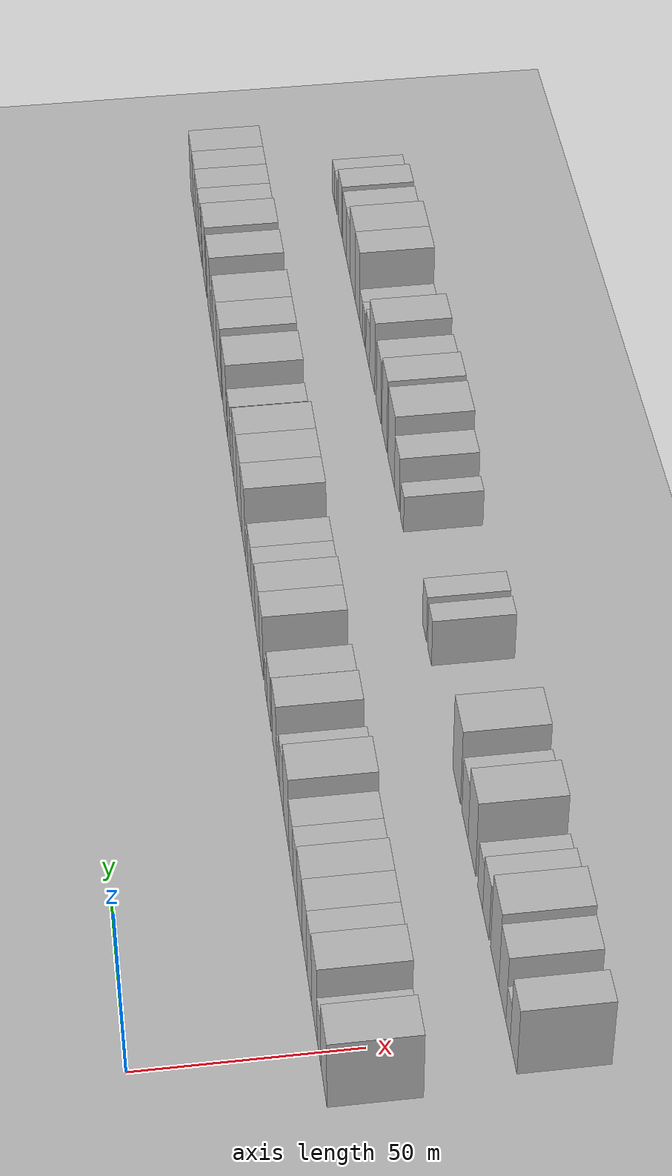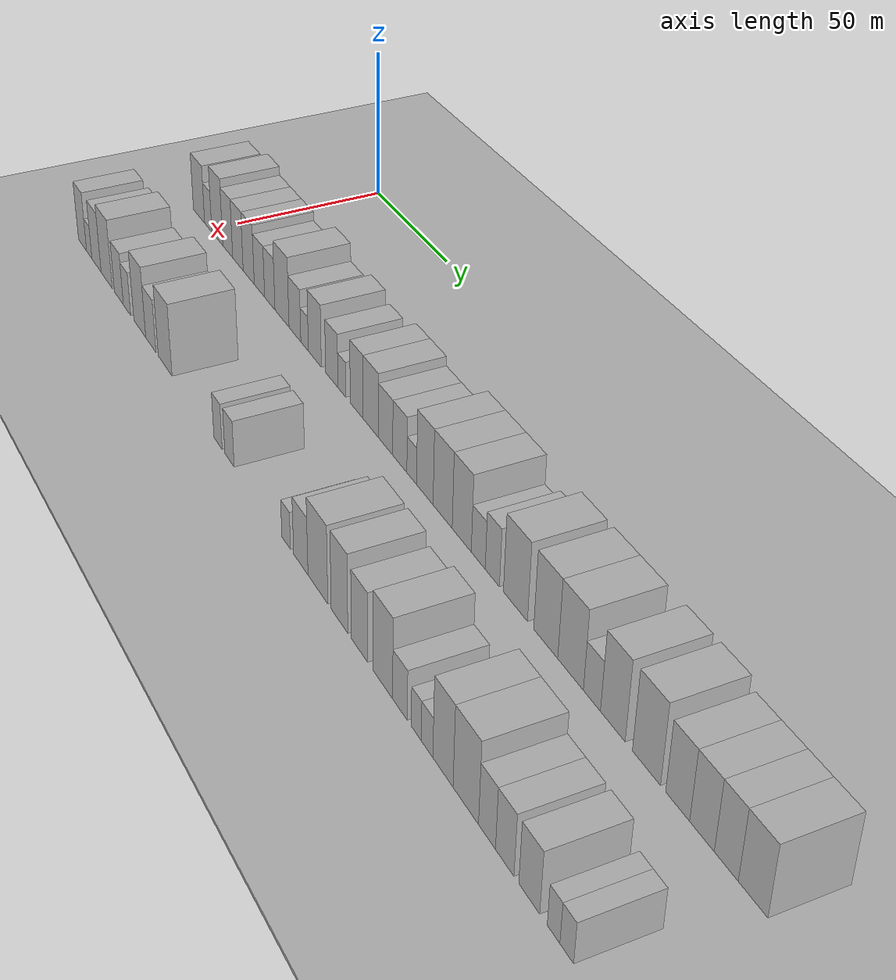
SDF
<sdf version="1.6">
 <world name="default">
  <include><name>ground_plane_1</name><uri>model://HANNAS_ground_plane</uri></include>
  <include>
   <name>ground_plane_2</name>
   <uri>model://HANNAS_ground_plane</uri>
   <pose>100 0 0  0 0 0</pose>
  </include>
  <model name="building_29">
   <static>1</static>
   <pose>50.0000 -9.3427 0 0.000000 0.000000 0.000000</pose>
   <link name="link">
    <pose>0 0 10.50 0 0 0</pose>
    <collision name="collision"><geometry><box><size>20.0000 10.3411 21.0000</size></box></geometry></collision>
    <visual name="visual">
     <cast_shadows>0</cast_shadows>
     <geometry><box><size>20.0000 10.3411 21.0000</size></box></geometry>
     <material>
      <script>
       <uri>model://HANNAS_wall/materials/scripts</uri>
       <uri>model://HANNAS_wall/materials/textures</uri>
       <name>vrc/HANNAS_wall</name>
      </script>
     </material>
    </visual>
   </link>
  </model>
  <model name="building_30">
   <static>1</static>
   <pose>50.0000 -0.9263 0 0.000000 0.000000 0.000000</pose>
   <link name="link">
    <pose>0 0 7.50 0 0 0</pose>
    <collision name="collision"><geometry><box><size>20.0000 6.4915 15.0000</size></box></geometry></collision>
    <visual name="visual">
     <cast_shadows>0</cast_shadows>
     <geometry><box><size>20.0000 6.4915 15.0000</size></box></geometry>
     <material>
      <script>
       <uri>model://HANNAS_wall/materials/scripts</uri>
       <uri>model://HANNAS_wall/materials/textures</uri>
       <name>vrc/HANNAS_wall</name>
      </script>
     </material>
    </visual>
   </link>
  </model>
  <model name="building_31">
   <static>1</static>
   <pose>50.0000 7.2069 0 0.000000 0.000000 0.000000</pose>
   <link name="link">
    <pose>0 0 12.00 0 0 0</pose>
    <collision name="collision"><geometry><box><size>20.0000 9.7750 24.0000</size></box></geometry></collision>
    <visual name="visual">
     <cast_shadows>0</cast_shadows>
     <geometry><box><size>20.0000 9.7750 24.0000</size></box></geometry>
     <material>
      <script>
       <uri>model://HANNAS_wall/materials/scripts</uri>
       <uri>model://HANNAS_wall/materials/textures</uri>
       <name>vrc/HANNAS_wall</name>
      </script>
     </material>
    </visual>
   </link>
  </model>
  <model name="building_32">
   <static>1</static>
   <pose>50.0000 16.3953 0 0.000000 0.000000 0.000000</pose>
   <link name="link">
    <pose>0 0 10.50 0 0 0</pose>
    <collision name="collision"><geometry><box><size>20.0000 8.6017 21.0000</size></box></geometry></collision>
    <visual name="visual">
     <cast_shadows>0</cast_shadows>
     <geometry><box><size>20.0000 8.6017 21.0000</size></box></geometry>
     <material>
      <script>
       <uri>model://HANNAS_wall/materials/scripts</uri>
       <uri>model://HANNAS_wall/materials/textures</uri>
       <name>vrc/HANNAS_wall</name>
      </script>
     </material>
    </visual>
   </link>
  </model>
  <model name="building_33">
   <static>1</static>
   <pose>50.0000 25.1196 0 0.000000 0.000000 0.000000</pose>
   <link name="link">
    <pose>0 0 10.50 0 0 0</pose>
    <collision name="collision"><geometry><box><size>20.0000 8.8470 21.0000</size></box></geometry></collision>
    <visual name="visual">
     <cast_shadows>0</cast_shadows>
     <geometry><box><size>20.0000 8.8470 21.0000</size></box></geometry>
     <material>
      <script>
       <uri>model://HANNAS_wall/materials/scripts</uri>
       <uri>model://HANNAS_wall/materials/textures</uri>
       <name>vrc/HANNAS_wall</name>
      </script>
     </material>
    </visual>
   </link>
  </model>
  <model name="building_34">
   <static>1</static>
   <pose>50.0000 34.1502 0 0.000000 0.000000 0.000000</pose>
   <link name="link">
    <pose>0 0 10.50 0 0 0</pose>
    <collision name="collision"><geometry><box><size>20.0000 9.2142 21.0000</size></box></geometry></collision>
    <visual name="visual">
     <cast_shadows>0</cast_shadows>
     <geometry><box><size>20.0000 9.2142 21.0000</size></box></geometry>
     <material>
      <script>
       <uri>model://HANNAS_wall/materials/scripts</uri>
       <uri>model://HANNAS_wall/materials/textures</uri>
       <name>vrc/HANNAS_wall</name>
      </script>
     </material>
    </visual>
   </link>
  </model>
  <model name="building_35">
   <static>1</static>
   <pose>50.0000 42.9496 0 0.000000 0.000000 0.000000</pose>
   <link name="link">
    <pose>0 0 9.00 0 0 0</pose>
    <collision name="collision"><geometry><box><size>20.0000 8.3844 18.0000</size></box></geometry></collision>
    <visual name="visual">
     <cast_shadows>0</cast_shadows>
     <geometry><box><size>20.0000 8.3844 18.0000</size></box></geometry>
     <material>
      <script>
       <uri>model://HANNAS_wall/materials/scripts</uri>
       <uri>model://HANNAS_wall/materials/textures</uri>
       <name>vrc/HANNAS_wall</name>
      </script>
     </material>
    </visual>
   </link>
  </model>
  <model name="building_36">
   <static>1</static>
   <pose>50.0000 51.2232 0 0.000000 0.000000 0.000000</pose>
   <link name="link">
    <pose>0 0 9.00 0 0 0</pose>
    <collision name="collision"><geometry><box><size>20.0000 8.1629 18.0000</size></box></geometry></collision>
    <visual name="visual">
     <cast_shadows>0</cast_shadows>
     <geometry><box><size>20.0000 8.1629 18.0000</size></box></geometry>
     <material>
      <script>
       <uri>model://HANNAS_wall/materials/scripts</uri>
       <uri>model://HANNAS_wall/materials/textures</uri>
       <name>vrc/HANNAS_wall</name>
      </script>
     </material>
    </visual>
   </link>
  </model>
  <model name="building_37">
   <static>1</static>
   <pose>50.0000 60.7332 0 0.000000 0.000000 0.000000</pose>
   <link name="link">
    <pose>0 0 12.00 0 0 0</pose>
    <collision name="collision"><geometry><box><size>20.0000 10.8570 24.0000</size></box></geometry></collision>
    <visual name="visual">
     <cast_shadows>0</cast_shadows>
     <geometry><box><size>20.0000 10.8570 24.0000</size></box></geometry>
     <material>
      <script>
       <uri>model://HANNAS_wall/materials/scripts</uri>
       <uri>model://HANNAS_wall/materials/textures</uri>
       <name>vrc/HANNAS_wall</name>
      </script>
     </material>
    </visual>
   </link>
  </model>
  <model name="building_38">
   <static>1</static>
   <pose>50.0000 70.5709 0 0.000000 0.000000 0.000000</pose>
   <link name="link">
    <pose>0 0 9.00 0 0 0</pose>
    <collision name="collision"><geometry><box><size>20.0000 8.8184 18.0000</size></box></geometry></collision>
    <visual name="visual">
     <cast_shadows>0</cast_shadows>
     <geometry><box><size>20.0000 8.8184 18.0000</size></box></geometry>
     <material>
      <script>
       <uri>model://HANNAS_wall/materials/scripts</uri>
       <uri>model://HANNAS_wall/materials/textures</uri>
       <name>vrc/HANNAS_wall</name>
      </script>
     </material>
    </visual>
   </link>
  </model>
  <model name="building_39">
   <static>1</static>
   <pose>50.0000 77.7623 0 0.000000 0.000000 0.000000</pose>
   <link name="link">
    <pose>0 0 6.00 0 0 0</pose>
    <collision name="collision"><geometry><box><size>20.0000 5.5645 12.0000</size></box></geometry></collision>
    <visual name="visual">
     <cast_shadows>0</cast_shadows>
     <geometry><box><size>20.0000 5.5645 12.0000</size></box></geometry>
     <material>
      <script>
       <uri>model://HANNAS_wall/materials/scripts</uri>
       <uri>model://HANNAS_wall/materials/textures</uri>
       <name>vrc/HANNAS_wall</name>
      </script>
     </material>
    </visual>
   </link>
  </model>
  <model name="building_40">
   <static>1</static>
   <pose>50.0000 85.2182 0 0.000000 0.000000 0.000000</pose>
   <link name="link">
    <pose>0 0 10.50 0 0 0</pose>
    <collision name="collision"><geometry><box><size>20.0000 9.3475 21.0000</size></box></geometry></collision>
    <visual name="visual">
     <cast_shadows>0</cast_shadows>
     <geometry><box><size>20.0000 9.3475 21.0000</size></box></geometry>
     <material>
      <script>
       <uri>model://HANNAS_wall/materials/scripts</uri>
       <uri>model://HANNAS_wall/materials/textures</uri>
       <name>vrc/HANNAS_wall</name>
      </script>
     </material>
    </visual>
   </link>
  </model>
  <model name="building_41">
   <static>1</static>
   <pose>50.0000 97.1692 0 0.000000 0.000000 0.000000</pose>
   <link name="link">
    <pose>0 0 9.00 0 0 0</pose>
    <collision name="collision"><geometry><box><size>20.0000 8.5545 18.0000</size></box></geometry></collision>
    <visual name="visual">
     <cast_shadows>0</cast_shadows>
     <geometry><box><size>20.0000 8.5545 18.0000</size></box></geometry>
     <material>
      <script>
       <uri>model://HANNAS_wall/materials/scripts</uri>
       <uri>model://HANNAS_wall/materials/textures</uri>
       <name>vrc/HANNAS_wall</name>
      </script>
     </material>
    </visual>
   </link>
  </model>
  <model name="building_42">
   <static>1</static>
   <pose>50.0000 104.1438 0 0.000000 0.000000 0.000000</pose>
   <link name="link">
    <pose>0 0 6.00 0 0 0</pose>
    <collision name="collision"><geometry><box><size>20.0000 5.3945 12.0000</size></box></geometry></collision>
    <visual name="visual">
     <cast_shadows>0</cast_shadows>
     <geometry><box><size>20.0000 5.3945 12.0000</size></box></geometry>
     <material>
      <script>
       <uri>model://HANNAS_wall/materials/scripts</uri>
       <uri>model://HANNAS_wall/materials/textures</uri>
       <name>vrc/HANNAS_wall</name>
      </script>
     </material>
    </visual>
   </link>
  </model>
  <model name="building_43">
   <static>1</static>
   <pose>50.0000 114.1314 0 0.000000 0.000000 0.000000</pose>
   <link name="link">
    <pose>0 0 10.50 0 0 0</pose>
    <collision name="collision"><geometry><box><size>20.0000 8.5808 21.0000</size></box></geometry></collision>
    <visual name="visual">
     <cast_shadows>0</cast_shadows>
     <geometry><box><size>20.0000 8.5808 21.0000</size></box></geometry>
     <material>
      <script>
       <uri>model://HANNAS_wall/materials/scripts</uri>
       <uri>model://HANNAS_wall/materials/textures</uri>
       <name>vrc/HANNAS_wall</name>
      </script>
     </material>
    </visual>
   </link>
  </model>
  <model name="building_44">
   <static>1</static>
   <pose>50.0000 123.3507 0 0.000000 0.000000 0.000000</pose>
   <link name="link">
    <pose>0 0 10.50 0 0 0</pose>
    <collision name="collision"><geometry><box><size>20.0000 9.8578 21.0000</size></box></geometry></collision>
    <visual name="visual">
     <cast_shadows>0</cast_shadows>
     <geometry><box><size>20.0000 9.8578 21.0000</size></box></geometry>
     <material>
      <script>
       <uri>model://HANNAS_wall/materials/scripts</uri>
       <uri>model://HANNAS_wall/materials/textures</uri>
       <name>vrc/HANNAS_wall</name>
      </script>
     </material>
    </visual>
   </link>
  </model>
  <model name="building_45">
   <static>1</static>
   <pose>50.0000 132.7346 0 0.000000 0.000000 0.000000</pose>
   <link name="link">
    <pose>0 0 9.00 0 0 0</pose>
    <collision name="collision"><geometry><box><size>20.0000 8.9099 18.0000</size></box></geometry></collision>
    <visual name="visual">
     <cast_shadows>0</cast_shadows>
     <geometry><box><size>20.0000 8.9099 18.0000</size></box></geometry>
     <material>
      <script>
       <uri>model://HANNAS_wall/materials/scripts</uri>
       <uri>model://HANNAS_wall/materials/textures</uri>
       <name>vrc/HANNAS_wall</name>
      </script>
     </material>
    </visual>
   </link>
  </model>
  <model name="building_46">
   <static>1</static>
   <pose>50.0000 141.5011 0 0.000000 0.000000 0.000000</pose>
   <link name="link">
    <pose>0 0 9.00 0 0 0</pose>
    <collision name="collision"><geometry><box><size>20.0000 8.6232 18.0000</size></box></geometry></collision>
    <visual name="visual">
     <cast_shadows>0</cast_shadows>
     <geometry><box><size>20.0000 8.6232 18.0000</size></box></geometry>
     <material>
      <script>
       <uri>model://HANNAS_wall/materials/scripts</uri>
       <uri>model://HANNAS_wall/materials/textures</uri>
       <name>vrc/HANNAS_wall</name>
      </script>
     </material>
    </visual>
   </link>
  </model>
  <model name="building_47">
   <static>1</static>
   <pose>50.0000 148.7037 0 0.000000 0.000000 0.000000</pose>
   <link name="link">
    <pose>0 0 6.00 0 0 0</pose>
    <collision name="collision"><geometry><box><size>20.0000 5.7819 12.0000</size></box></geometry></collision>
    <visual name="visual">
     <cast_shadows>0</cast_shadows>
     <geometry><box><size>20.0000 5.7819 12.0000</size></box></geometry>
     <material>
      <script>
       <uri>model://HANNAS_wall/materials/scripts</uri>
       <uri>model://HANNAS_wall/materials/textures</uri>
       <name>vrc/HANNAS_wall</name>
      </script>
     </material>
    </visual>
   </link>
  </model>
  <model name="building_48">
   <static>1</static>
   <pose>50.0000 156.4037 0 0.000000 0.000000 0.000000</pose>
   <link name="link">
    <pose>0 0 12.00 0 0 0</pose>
    <collision name="collision"><geometry><box><size>20.0000 9.6182 24.0000</size></box></geometry></collision>
    <visual name="visual">
     <cast_shadows>0</cast_shadows>
     <geometry><box><size>20.0000 9.6182 24.0000</size></box></geometry>
     <material>
      <script>
       <uri>model://HANNAS_wall/materials/scripts</uri>
       <uri>model://HANNAS_wall/materials/textures</uri>
       <name>vrc/HANNAS_wall</name>
      </script>
     </material>
    </visual>
   </link>
  </model>
  <model name="building_49">
   <static>1</static>
   <pose>50.0000 166.6151 0 0.000000 0.000000 0.000000</pose>
   <link name="link">
    <pose>0 0 12.00 0 0 0</pose>
    <collision name="collision"><geometry><box><size>20.0000 10.8045 24.0000</size></box></geometry></collision>
    <visual name="visual">
     <cast_shadows>0</cast_shadows>
     <geometry><box><size>20.0000 10.8045 24.0000</size></box></geometry>
     <material>
      <script>
       <uri>model://HANNAS_wall/materials/scripts</uri>
       <uri>model://HANNAS_wall/materials/textures</uri>
       <name>vrc/HANNAS_wall</name>
      </script>
     </material>
    </visual>
   </link>
  </model>
  <model name="building_50">
   <static>1</static>
   <pose>50.0000 177.2005 0 0.000000 0.000000 0.000000</pose>
   <link name="link">
    <pose>0 0 12.00 0 0 0</pose>
    <collision name="collision"><geometry><box><size>20.0000 10.3664 24.0000</size></box></geometry></collision>
    <visual name="visual">
     <cast_shadows>0</cast_shadows>
     <geometry><box><size>20.0000 10.3664 24.0000</size></box></geometry>
     <material>
      <script>
       <uri>model://HANNAS_wall/materials/scripts</uri>
       <uri>model://HANNAS_wall/materials/textures</uri>
       <name>vrc/HANNAS_wall</name>
      </script>
     </material>
    </visual>
   </link>
  </model>
  <model name="building_51">
   <static>1</static>
   <pose>50.0000 186.0834 0 0.000000 0.000000 0.000000</pose>
   <link name="link">
    <pose>0 0 7.50 0 0 0</pose>
    <collision name="collision"><geometry><box><size>20.0000 7.3994 15.0000</size></box></geometry></collision>
    <visual name="visual">
     <cast_shadows>0</cast_shadows>
     <geometry><box><size>20.0000 7.3994 15.0000</size></box></geometry>
     <material>
      <script>
       <uri>model://HANNAS_wall/materials/scripts</uri>
       <uri>model://HANNAS_wall/materials/textures</uri>
       <name>vrc/HANNAS_wall</name>
      </script>
     </material>
    </visual>
   </link>
  </model>
  <model name="building_52">
   <static>1</static>
   <pose>50.0000 193.4686 0 0.000000 0.000000 0.000000</pose>
   <link name="link">
    <pose>0 0 9.00 0 0 0</pose>
    <collision name="collision"><geometry><box><size>20.0000 7.3710 18.0000</size></box></geometry></collision>
    <visual name="visual">
     <cast_shadows>0</cast_shadows>
     <geometry><box><size>20.0000 7.3710 18.0000</size></box></geometry>
     <material>
      <script>
       <uri>model://HANNAS_wall/materials/scripts</uri>
       <uri>model://HANNAS_wall/materials/textures</uri>
       <name>vrc/HANNAS_wall</name>
      </script>
     </material>
    </visual>
   </link>
  </model>
  <model name="building_53">
   <static>1</static>
   <pose>50.0000 205.1435 0 0.000000 0.000000 0.000000</pose>
   <link name="link">
    <pose>0 0 12.00 0 0 0</pose>
    <collision name="collision"><geometry><box><size>20.0000 11.9788 24.0000</size></box></geometry></collision>
    <visual name="visual">
     <cast_shadows>0</cast_shadows>
     <geometry><box><size>20.0000 11.9788 24.0000</size></box></geometry>
     <material>
      <script>
       <uri>model://HANNAS_wall/materials/scripts</uri>
       <uri>model://HANNAS_wall/materials/textures</uri>
       <name>vrc/HANNAS_wall</name>
      </script>
     </material>
    </visual>
   </link>
  </model>
  <model name="building_54">
   <static>1</static>
   <pose>50.0000 219.8021 0 0.000000 0.000000 0.000000</pose>
   <link name="link">
    <pose>0 0 12.00 0 0 0</pose>
    <collision name="collision"><geometry><box><size>20.0000 11.3384 24.0000</size></box></geometry></collision>
    <visual name="visual">
     <cast_shadows>0</cast_shadows>
     <geometry><box><size>20.0000 11.3384 24.0000</size></box></geometry>
     <material>
      <script>
       <uri>model://HANNAS_wall/materials/scripts</uri>
       <uri>model://HANNAS_wall/materials/textures</uri>
       <name>vrc/HANNAS_wall</name>
      </script>
     </material>
    </visual>
   </link>
  </model>
  <model name="building_55">
   <static>1</static>
   <pose>50.0000 231.2927 0 0.000000 0.000000 0.000000</pose>
   <link name="link">
    <pose>0 0 12.00 0 0 0</pose>
    <collision name="collision"><geometry><box><size>20.0000 11.6429 24.0000</size></box></geometry></collision>
    <visual name="visual">
     <cast_shadows>0</cast_shadows>
     <geometry><box><size>20.0000 11.6429 24.0000</size></box></geometry>
     <material>
      <script>
       <uri>model://HANNAS_wall/materials/scripts</uri>
       <uri>model://HANNAS_wall/materials/textures</uri>
       <name>vrc/HANNAS_wall</name>
      </script>
     </material>
    </visual>
   </link>
  </model>
  <model name="building_56">
   <static>1</static>
   <pose>50.0000 240.8480 0 0.000000 0.000000 0.000000</pose>
   <link name="link">
    <pose>0 0 7.50 0 0 0</pose>
    <collision name="collision"><geometry><box><size>20.0000 7.4675 15.0000</size></box></geometry></collision>
    <visual name="visual">
     <cast_shadows>0</cast_shadows>
     <geometry><box><size>20.0000 7.4675 15.0000</size></box></geometry>
     <material>
      <script>
       <uri>model://HANNAS_wall/materials/scripts</uri>
       <uri>model://HANNAS_wall/materials/textures</uri>
       <name>vrc/HANNAS_wall</name>
      </script>
     </material>
    </visual>
   </link>
  </model>
  <model name="building_57">
   <static>1</static>
   <pose>50.0000 249.8344 0 0.000000 0.000000 0.000000</pose>
   <link name="link">
    <pose>0 0 12.00 0 0 0</pose>
    <collision name="collision"><geometry><box><size>20.0000 10.5054 24.0000</size></box></geometry></collision>
    <visual name="visual">
     <cast_shadows>0</cast_shadows>
     <geometry><box><size>20.0000 10.5054 24.0000</size></box></geometry>
     <material>
      <script>
       <uri>model://HANNAS_wall/materials/scripts</uri>
       <uri>model://HANNAS_wall/materials/textures</uri>
       <name>vrc/HANNAS_wall</name>
      </script>
     </material>
    </visual>
   </link>
  </model>
  <model name="building_58">
   <static>1</static>
   <pose>50.0000 263.7478 0 0.000000 0.000000 0.000000</pose>
   <link name="link">
    <pose>0 0 12.00 0 0 0</pose>
    <collision name="collision"><geometry><box><size>20.0000 11.3214 24.0000</size></box></geometry></collision>
    <visual name="visual">
     <cast_shadows>0</cast_shadows>
     <geometry><box><size>20.0000 11.3214 24.0000</size></box></geometry>
     <material>
      <script>
       <uri>model://HANNAS_wall/materials/scripts</uri>
       <uri>model://HANNAS_wall/materials/textures</uri>
       <name>vrc/HANNAS_wall</name>
      </script>
     </material>
    </visual>
   </link>
  </model>
  <model name="building_59">
   <static>1</static>
   <pose>50.0000 276.0227 0 0.000000 0.000000 0.000000</pose>
   <link name="link">
    <pose>0 0 10.50 0 0 0</pose>
    <collision name="collision"><geometry><box><size>20.0000 9.2283 21.0000</size></box></geometry></collision>
    <visual name="visual">
     <cast_shadows>0</cast_shadows>
     <geometry><box><size>20.0000 9.2283 21.0000</size></box></geometry>
     <material>
      <script>
       <uri>model://HANNAS_wall/materials/scripts</uri>
       <uri>model://HANNAS_wall/materials/textures</uri>
       <name>vrc/HANNAS_wall</name>
      </script>
     </material>
    </visual>
   </link>
  </model>
  <model name="building_60">
   <static>1</static>
   <pose>50.0000 285.2023 0 0.000000 0.000000 0.000000</pose>
   <link name="link">
    <pose>0 0 10.50 0 0 0</pose>
    <collision name="collision"><geometry><box><size>20.0000 9.1310 21.0000</size></box></geometry></collision>
    <visual name="visual">
     <cast_shadows>0</cast_shadows>
     <geometry><box><size>20.0000 9.1310 21.0000</size></box></geometry>
     <material>
      <script>
       <uri>model://HANNAS_wall/materials/scripts</uri>
       <uri>model://HANNAS_wall/materials/textures</uri>
       <name>vrc/HANNAS_wall</name>
      </script>
     </material>
    </visual>
   </link>
  </model>
  <model name="building_61">
   <static>1</static>
   <pose>50.0000 294.0613 0 0.000000 0.000000 0.000000</pose>
   <link name="link">
    <pose>0 0 10.50 0 0 0</pose>
    <collision name="collision"><geometry><box><size>20.0000 8.5869 21.0000</size></box></geometry></collision>
    <visual name="visual">
     <cast_shadows>0</cast_shadows>
     <geometry><box><size>20.0000 8.5869 21.0000</size></box></geometry>
     <material>
      <script>
       <uri>model://HANNAS_wall/materials/scripts</uri>
       <uri>model://HANNAS_wall/materials/textures</uri>
       <name>vrc/HANNAS_wall</name>
      </script>
     </material>
    </visual>
   </link>
  </model>
  <model name="building_62">
   <static>1</static>
   <pose>50.0000 303.4653 0 0.000000 0.000000 0.000000</pose>
   <link name="link">
    <pose>0 0 10.50 0 0 0</pose>
    <collision name="collision"><geometry><box><size>20.0000 10.2212 21.0000</size></box></geometry></collision>
    <visual name="visual">
     <cast_shadows>0</cast_shadows>
     <geometry><box><size>20.0000 10.2212 21.0000</size></box></geometry>
     <material>
      <script>
       <uri>model://HANNAS_wall/materials/scripts</uri>
       <uri>model://HANNAS_wall/materials/textures</uri>
       <name>vrc/HANNAS_wall</name>
      </script>
     </material>
    </visual>
   </link>
  </model>
  <model name="building_96">
   <static>1</static>
   <pose>90.0000 -6.8732 0 0.000000 0.000000 0.000000</pose>
   <link name="link">
    <pose>0 0 10.50 0 0 0</pose>
    <collision name="collision"><geometry><box><size>20.0000 8.4338 21.0000</size></box></geometry></collision>
    <visual name="visual">
     <cast_shadows>0</cast_shadows>
     <geometry><box><size>20.0000 8.4338 21.0000</size></box></geometry>
     <material>
      <script>
       <uri>model://HANNAS_wall/materials/scripts</uri>
       <uri>model://HANNAS_wall/materials/textures</uri>
       <name>vrc/HANNAS_wall</name>
      </script>
     </material>
    </visual>
   </link>
  </model>
  <model name="building_97">
   <static>1</static>
   <pose>90.0000 0.0352 0 0.000000 0.000000 0.000000</pose>
   <link name="link">
    <pose>0 0 6.00 0 0 0</pose>
    <collision name="collision"><geometry><box><size>20.0000 5.3831 12.0000</size></box></geometry></collision>
    <visual name="visual">
     <cast_shadows>0</cast_shadows>
     <geometry><box><size>20.0000 5.3831 12.0000</size></box></geometry>
     <material>
      <script>
       <uri>model://HANNAS_wall/materials/scripts</uri>
       <uri>model://HANNAS_wall/materials/textures</uri>
       <name>vrc/HANNAS_wall</name>
      </script>
     </material>
    </visual>
   </link>
  </model>
  <model name="building_98">
   <static>1</static>
   <pose>90.0000 7.3575 0 0.000000 0.000000 0.000000</pose>
   <link name="link">
    <pose>0 0 10.50 0 0 0</pose>
    <collision name="collision"><geometry><box><size>20.0000 9.2614 21.0000</size></box></geometry></collision>
    <visual name="visual">
     <cast_shadows>0</cast_shadows>
     <geometry><box><size>20.0000 9.2614 21.0000</size></box></geometry>
     <material>
      <script>
       <uri>model://HANNAS_wall/materials/scripts</uri>
       <uri>model://HANNAS_wall/materials/textures</uri>
       <name>vrc/HANNAS_wall</name>
      </script>
     </material>
    </visual>
   </link>
  </model>
  <model name="building_99">
   <static>1</static>
   <pose>90.0000 17.4516 0 0.000000 0.000000 0.000000</pose>
   <link name="link">
    <pose>0 0 12.00 0 0 0</pose>
    <collision name="collision"><geometry><box><size>20.0000 10.9268 24.0000</size></box></geometry></collision>
    <visual name="visual">
     <cast_shadows>0</cast_shadows>
     <geometry><box><size>20.0000 10.9268 24.0000</size></box></geometry>
     <material>
      <script>
       <uri>model://HANNAS_wall/materials/scripts</uri>
       <uri>model://HANNAS_wall/materials/textures</uri>
       <name>vrc/HANNAS_wall</name>
      </script>
     </material>
    </visual>
   </link>
  </model>
  <model name="building_100">
   <static>1</static>
   <pose>90.0000 29.1551 0 0.000000 0.000000 0.000000</pose>
   <link name="link">
    <pose>0 0 9.00 0 0 0</pose>
    <collision name="collision"><geometry><box><size>20.0000 8.4802 18.0000</size></box></geometry></collision>
    <visual name="visual">
     <cast_shadows>0</cast_shadows>
     <geometry><box><size>20.0000 8.4802 18.0000</size></box></geometry>
     <material>
      <script>
       <uri>model://HANNAS_wall/materials/scripts</uri>
       <uri>model://HANNAS_wall/materials/textures</uri>
       <name>vrc/HANNAS_wall</name>
      </script>
     </material>
    </visual>
   </link>
  </model>
  <model name="building_101">
   <static>1</static>
   <pose>90.0000 36.7968 0 0.000000 0.000000 0.000000</pose>
   <link name="link">
    <pose>0 0 7.50 0 0 0</pose>
    <collision name="collision"><geometry><box><size>20.0000 6.8031 15.0000</size></box></geometry></collision>
    <visual name="visual">
     <cast_shadows>0</cast_shadows>
     <geometry><box><size>20.0000 6.8031 15.0000</size></box></geometry>
     <material>
      <script>
       <uri>model://HANNAS_wall/materials/scripts</uri>
       <uri>model://HANNAS_wall/materials/textures</uri>
       <name>vrc/HANNAS_wall</name>
      </script>
     </material>
    </visual>
   </link>
  </model>
  <model name="building_102">
   <static>1</static>
   <pose>90.0000 48.5049 0 0.000000 0.000000 0.000000</pose>
   <link name="link">
    <pose>0 0 12.00 0 0 0</pose>
    <collision name="collision"><geometry><box><size>20.0000 10.6131 24.0000</size></box></geometry></collision>
    <visual name="visual">
     <cast_shadows>0</cast_shadows>
     <geometry><box><size>20.0000 10.6131 24.0000</size></box></geometry>
     <material>
      <script>
       <uri>model://HANNAS_wall/materials/scripts</uri>
       <uri>model://HANNAS_wall/materials/textures</uri>
       <name>vrc/HANNAS_wall</name>
      </script>
     </material>
    </visual>
   </link>
  </model>
  <model name="building_103">
   <static>1</static>
   <pose>90.0000 58.2677 0 0.000000 0.000000 0.000000</pose>
   <link name="link">
    <pose>0 0 9.00 0 0 0</pose>
    <collision name="collision"><geometry><box><size>20.0000 8.9125 18.0000</size></box></geometry></collision>
    <visual name="visual">
     <cast_shadows>0</cast_shadows>
     <geometry><box><size>20.0000 8.9125 18.0000</size></box></geometry>
     <material>
      <script>
       <uri>model://HANNAS_wall/materials/scripts</uri>
       <uri>model://HANNAS_wall/materials/textures</uri>
       <name>vrc/HANNAS_wall</name>
      </script>
     </material>
    </visual>
   </link>
  </model>
  <model name="building_104">
   <static>1</static>
   <pose>90.0000 70.5513 0 0.000000 0.000000 0.000000</pose>
   <link name="link">
    <pose>0 0 12.00 0 0 0</pose>
    <collision name="collision"><geometry><box><size>20.0000 11.6547 24.0000</size></box></geometry></collision>
    <visual name="visual">
     <cast_shadows>0</cast_shadows>
     <geometry><box><size>20.0000 11.6547 24.0000</size></box></geometry>
     <material>
      <script>
       <uri>model://HANNAS_wall/materials/scripts</uri>
       <uri>model://HANNAS_wall/materials/textures</uri>
       <name>vrc/HANNAS_wall</name>
      </script>
     </material>
    </visual>
   </link>
  </model>
  <model name="building_105">
   <static>1</static>
   <pose>90.0000 112.6288 0 0.000000 0.000000 0.000000</pose>
   <link name="link">
    <pose>0 0 7.50 0 0 0</pose>
    <collision name="collision"><geometry><box><size>20.0000 6.1668 15.0000</size></box></geometry></collision>
    <visual name="visual">
     <cast_shadows>0</cast_shadows>
     <geometry><box><size>20.0000 6.1668 15.0000</size></box></geometry>
     <material>
      <script>
       <uri>model://HANNAS_wall/materials/scripts</uri>
       <uri>model://HANNAS_wall/materials/textures</uri>
       <name>vrc/HANNAS_wall</name>
      </script>
     </material>
    </visual>
   </link>
  </model>
  <model name="building_106">
   <static>1</static>
   <pose>90.0000 121.1054 0 0.000000 0.000000 0.000000</pose>
   <link name="link">
    <pose>0 0 7.50 0 0 0</pose>
    <collision name="collision"><geometry><box><size>20.0000 6.7864 15.0000</size></box></geometry></collision>
    <visual name="visual">
     <cast_shadows>0</cast_shadows>
     <geometry><box><size>20.0000 6.7864 15.0000</size></box></geometry>
     <material>
      <script>
       <uri>model://HANNAS_wall/materials/scripts</uri>
       <uri>model://HANNAS_wall/materials/textures</uri>
       <name>vrc/HANNAS_wall</name>
      </script>
     </material>
    </visual>
   </link>
  </model>
  <model name="building_107">
   <static>1</static>
   <pose>90.0000 159.8872 0 0.000000 0.000000 0.000000</pose>
   <link name="link">
    <pose>0 0 6.00 0 0 0</pose>
    <collision name="collision"><geometry><box><size>20.0000 5.5923 12.0000</size></box></geometry></collision>
    <visual name="visual">
     <cast_shadows>0</cast_shadows>
     <geometry><box><size>20.0000 5.5923 12.0000</size></box></geometry>
     <material>
      <script>
       <uri>model://HANNAS_wall/materials/scripts</uri>
       <uri>model://HANNAS_wall/materials/textures</uri>
       <name>vrc/HANNAS_wall</name>
      </script>
     </material>
    </visual>
   </link>
  </model>
  <model name="building_108">
   <static>1</static>
   <pose>90.0000 169.1658 0 0.000000 0.000000 0.000000</pose>
   <link name="link">
    <pose>0 0 9.00 0 0 0</pose>
    <collision name="collision"><geometry><box><size>20.0000 8.9650 18.0000</size></box></geometry></collision>
    <visual name="visual">
     <cast_shadows>0</cast_shadows>
     <geometry><box><size>20.0000 8.9650 18.0000</size></box></geometry>
     <material>
      <script>
       <uri>model://HANNAS_wall/materials/scripts</uri>
       <uri>model://HANNAS_wall/materials/textures</uri>
       <name>vrc/HANNAS_wall</name>
      </script>
     </material>
    </visual>
   </link>
  </model>
  <model name="building_109">
   <static>1</static>
   <pose>90.0000 179.6185 0 0.000000 0.000000 0.000000</pose>
   <link name="link">
    <pose>0 0 12.00 0 0 0</pose>
    <collision name="collision"><geometry><box><size>20.0000 11.9403 24.0000</size></box></geometry></collision>
    <visual name="visual">
     <cast_shadows>0</cast_shadows>
     <geometry><box><size>20.0000 11.9403 24.0000</size></box></geometry>
     <material>
      <script>
       <uri>model://HANNAS_wall/materials/scripts</uri>
       <uri>model://HANNAS_wall/materials/textures</uri>
       <name>vrc/HANNAS_wall</name>
      </script>
     </material>
    </visual>
   </link>
  </model>
  <model name="building_110">
   <static>1</static>
   <pose>90.0000 192.3900 0 0.000000 0.000000 0.000000</pose>
   <link name="link">
    <pose>0 0 12.00 0 0 0</pose>
    <collision name="collision"><geometry><box><size>20.0000 9.6026 24.0000</size></box></geometry></collision>
    <visual name="visual">
     <cast_shadows>0</cast_shadows>
     <geometry><box><size>20.0000 9.6026 24.0000</size></box></geometry>
     <material>
      <script>
       <uri>model://HANNAS_wall/materials/scripts</uri>
       <uri>model://HANNAS_wall/materials/textures</uri>
       <name>vrc/HANNAS_wall</name>
      </script>
     </material>
    </visual>
   </link>
  </model>
  <model name="building_111">
   <static>1</static>
   <pose>90.0000 203.7243 0 0.000000 0.000000 0.000000</pose>
   <link name="link">
    <pose>0 0 10.50 0 0 0</pose>
    <collision name="collision"><geometry><box><size>20.0000 9.0660 21.0000</size></box></geometry></collision>
    <visual name="visual">
     <cast_shadows>0</cast_shadows>
     <geometry><box><size>20.0000 9.0660 21.0000</size></box></geometry>
     <material>
      <script>
       <uri>model://HANNAS_wall/materials/scripts</uri>
       <uri>model://HANNAS_wall/materials/textures</uri>
       <name>vrc/HANNAS_wall</name>
      </script>
     </material>
    </visual>
   </link>
  </model>
  <model name="building_112">
   <static>1</static>
   <pose>90.0000 216.4228 0 0.000000 0.000000 0.000000</pose>
   <link name="link">
    <pose>0 0 12.00 0 0 0</pose>
    <collision name="collision"><geometry><box><size>20.0000 10.3310 24.0000</size></box></geometry></collision>
    <visual name="visual">
     <cast_shadows>0</cast_shadows>
     <geometry><box><size>20.0000 10.3310 24.0000</size></box></geometry>
     <material>
      <script>
       <uri>model://HANNAS_wall/materials/scripts</uri>
       <uri>model://HANNAS_wall/materials/textures</uri>
       <name>vrc/HANNAS_wall</name>
      </script>
     </material>
    </visual>
   </link>
  </model>
  <model name="building_113">
   <static>1</static>
   <pose>90.0000 225.3349 0 0.000000 0.000000 0.000000</pose>
   <link name="link">
    <pose>0 0 7.50 0 0 0</pose>
    <collision name="collision"><geometry><box><size>20.0000 7.4932 15.0000</size></box></geometry></collision>
    <visual name="visual">
     <cast_shadows>0</cast_shadows>
     <geometry><box><size>20.0000 7.4932 15.0000</size></box></geometry>
     <material>
      <script>
       <uri>model://HANNAS_wall/materials/scripts</uri>
       <uri>model://HANNAS_wall/materials/textures</uri>
       <name>vrc/HANNAS_wall</name>
      </script>
     </material>
    </visual>
   </link>
  </model>
  <model name="building_114">
   <static>1</static>
   <pose>90.0000 233.5717 0 0.000000 0.000000 0.000000</pose>
   <link name="link">
    <pose>0 0 6.00 0 0 0</pose>
    <collision name="collision"><geometry><box><size>20.0000 4.9804 12.0000</size></box></geometry></collision>
    <visual name="visual">
     <cast_shadows>0</cast_shadows>
     <geometry><box><size>20.0000 4.9804 12.0000</size></box></geometry>
     <material>
      <script>
       <uri>model://HANNAS_wall/materials/scripts</uri>
       <uri>model://HANNAS_wall/materials/textures</uri>
       <name>vrc/HANNAS_wall</name>
      </script>
     </material>
    </visual>
   </link>
  </model>
  <model name="building_115">
   <static>1</static>
   <pose>90.0000 238.9131 0 0.000000 0.000000 0.000000</pose>
   <link name="link">
    <pose>0 0 6.00 0 0 0</pose>
    <collision name="collision"><geometry><box><size>20.0000 5.7022 12.0000</size></box></geometry></collision>
    <visual name="visual">
     <cast_shadows>0</cast_shadows>
     <geometry><box><size>20.0000 5.7022 12.0000</size></box></geometry>
     <material>
      <script>
       <uri>model://HANNAS_wall/materials/scripts</uri>
       <uri>model://HANNAS_wall/materials/textures</uri>
       <name>vrc/HANNAS_wall</name>
      </script>
     </material>
    </visual>
   </link>
  </model>
  <model name="building_116">
   <static>1</static>
   <pose>90.0000 246.5667 0 0.000000 0.000000 0.000000</pose>
   <link name="link">
    <pose>0 0 12.00 0 0 0</pose>
    <collision name="collision"><geometry><box><size>20.0000 9.6052 24.0000</size></box></geometry></collision>
    <visual name="visual">
     <cast_shadows>0</cast_shadows>
     <geometry><box><size>20.0000 9.6052 24.0000</size></box></geometry>
     <material>
      <script>
       <uri>model://HANNAS_wall/materials/scripts</uri>
       <uri>model://HANNAS_wall/materials/textures</uri>
       <name>vrc/HANNAS_wall</name>
      </script>
     </material>
    </visual>
   </link>
  </model>
  <model name="building_117">
   <static>1</static>
   <pose>90.0000 257.1782 0 0.000000 0.000000 0.000000</pose>
   <link name="link">
    <pose>0 0 12.00 0 0 0</pose>
    <collision name="collision"><geometry><box><size>20.0000 11.6178 24.0000</size></box></geometry></collision>
    <visual name="visual">
     <cast_shadows>0</cast_shadows>
     <geometry><box><size>20.0000 11.6178 24.0000</size></box></geometry>
     <material>
      <script>
       <uri>model://HANNAS_wall/materials/scripts</uri>
       <uri>model://HANNAS_wall/materials/textures</uri>
       <name>vrc/HANNAS_wall</name>
      </script>
     </material>
    </visual>
   </link>
  </model>
  <model name="building_118">
   <static>1</static>
   <pose>90.0000 266.7157 0 0.000000 0.000000 0.000000</pose>
   <link name="link">
    <pose>0 0 9.00 0 0 0</pose>
    <collision name="collision"><geometry><box><size>20.0000 7.4573 18.0000</size></box></geometry></collision>
    <visual name="visual">
     <cast_shadows>0</cast_shadows>
     <geometry><box><size>20.0000 7.4573 18.0000</size></box></geometry>
     <material>
      <script>
       <uri>model://HANNAS_wall/materials/scripts</uri>
       <uri>model://HANNAS_wall/materials/textures</uri>
       <name>vrc/HANNAS_wall</name>
      </script>
     </material>
    </visual>
   </link>
  </model>
  <model name="building_119">
   <static>1</static>
   <pose>90.0000 274.3848 0 0.000000 0.000000 0.000000</pose>
   <link name="link">
    <pose>0 0 9.00 0 0 0</pose>
    <collision name="collision"><geometry><box><size>20.0000 7.8809 18.0000</size></box></geometry></collision>
    <visual name="visual">
     <cast_shadows>0</cast_shadows>
     <geometry><box><size>20.0000 7.8809 18.0000</size></box></geometry>
     <material>
      <script>
       <uri>model://HANNAS_wall/materials/scripts</uri>
       <uri>model://HANNAS_wall/materials/textures</uri>
       <name>vrc/HANNAS_wall</name>
      </script>
     </material>
    </visual>
   </link>
  </model>
  <model name="building_120">
   <static>1</static>
   <pose>90.0000 284.6207 0 0.000000 0.000000 0.000000</pose>
   <link name="link">
    <pose>0 0 9.00 0 0 0</pose>
    <collision name="collision"><geometry><box><size>20.0000 8.5909 18.0000</size></box></geometry></collision>
    <visual name="visual">
     <cast_shadows>0</cast_shadows>
     <geometry><box><size>20.0000 8.5909 18.0000</size></box></geometry>
     <material>
      <script>
       <uri>model://HANNAS_wall/materials/scripts</uri>
       <uri>model://HANNAS_wall/materials/textures</uri>
       <name>vrc/HANNAS_wall</name>
      </script>
     </material>
    </visual>
   </link>
  </model>
  <model name="building_121">
   <static>1</static>
   <pose>90.0000 294.3980 0 0.000000 0.000000 0.000000</pose>
   <link name="link">
    <pose>0 0 6.00 0 0 0</pose>
    <collision name="collision"><geometry><box><size>20.0000 4.9637 12.0000</size></box></geometry></collision>
    <visual name="visual">
     <cast_shadows>0</cast_shadows>
     <geometry><box><size>20.0000 4.9637 12.0000</size></box></geometry>
     <material>
      <script>
       <uri>model://HANNAS_wall/materials/scripts</uri>
       <uri>model://HANNAS_wall/materials/textures</uri>
       <name>vrc/HANNAS_wall</name>
      </script>
     </material>
    </visual>
   </link>
  </model>
  <model name="building_122">
   <static>1</static>
   <pose>90.0000 299.5370 0 0.000000 0.000000 0.000000</pose>
   <link name="link">
    <pose>0 0 6.00 0 0 0</pose>
    <collision name="collision"><geometry><box><size>20.0000 5.3144 12.0000</size></box></geometry></collision>
    <visual name="visual">
     <cast_shadows>0</cast_shadows>
     <geometry><box><size>20.0000 5.3144 12.0000</size></box></geometry>
     <material>
      <script>
       <uri>model://HANNAS_wall/materials/scripts</uri>
       <uri>model://HANNAS_wall/materials/textures</uri>
       <name>vrc/HANNAS_wall</name>
      </script>
     </material>
    </visual>
   </link>
  </model>
 </world>
</sdf>
